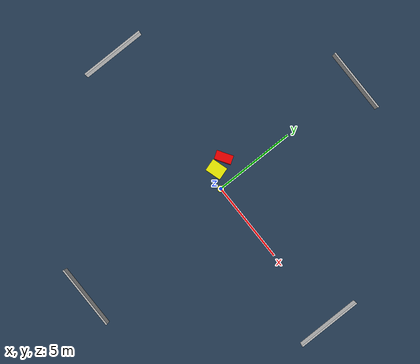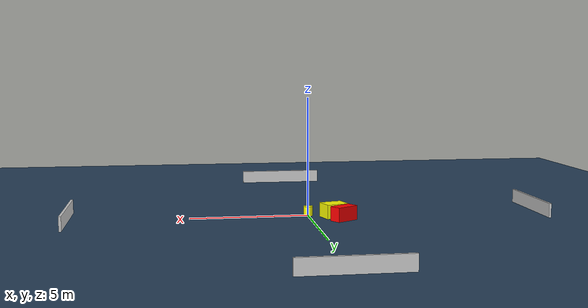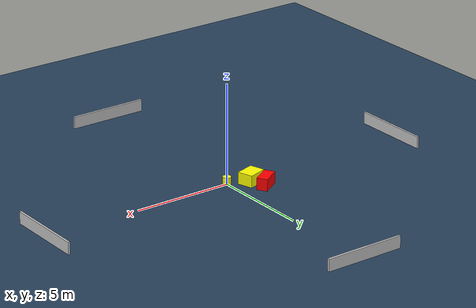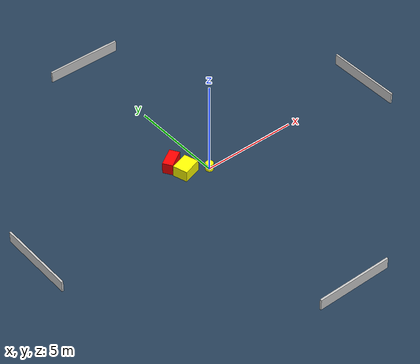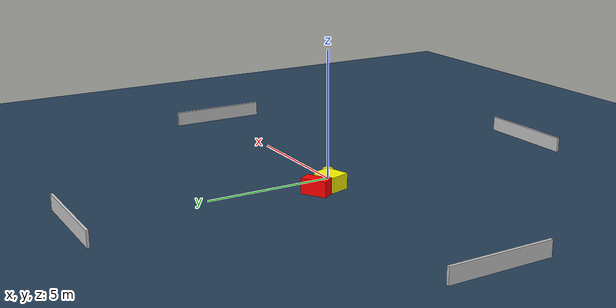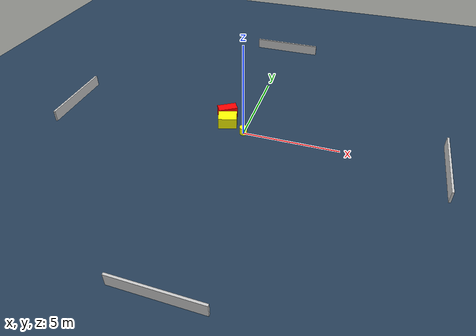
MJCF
<?xml version="1.0" ?>
<mujoco model="generated_environment">
  <option timestep="0.01" integrator="RK4" cone="elliptic"/>
  <default>
    <geom density="1"/>
  </default>
  <asset>
    <texture builtin="gradient" height="3072" name="skybox" rgb1="0.3 0.5 0.7" rgb2="0 0 0" type="skybox" width="512"/>
    <texture builtin="checker" height="300" name="groundplane" rgb1="0.2 0.3 0.4" rgb2="0.1 0.2 0.3" type="2d" width="300"/>
    <material name="groundplane" reflectance="0.2" texrepeat="5 5" texture="groundplane"/>
  </asset>
  <worldbody>
    <light dir="0 0 -1" directional="true" pos="0 0 1.5"/>
    <geom condim="3" friction="0.5 0.005 0.001" material="groundplane" name="floor" pos="0 0 0" size="0 0 0.05" type="plane"/>
    <body name="walls">
      <geom name="wall_1" condim="4" pos="-10.0 0.0 0.3" rgba="0.800000011920929 0.800000011920929 0.800000011920929 1.0" size="0.05 2.0 0.3" type="box"/>
      <geom name="wall_2" condim="4" pos="10.0 0.0 0.3" rgba="0.800000011920929 0.800000011920929 0.800000011920929 1.0" size="0.05 2.0 0.3" type="box"/>
      <geom name="wall_3" condim="4" pos="0.0 -10.0 0.3" rgba="0.800000011920929 0.800000011920929 0.800000011920929 1.0" size="2.0 0.05 0.3" type="box"/>
      <geom name="wall_4" condim="4" pos="0.0 10.0 0.3" rgba="0.800000011920929 0.800000011920929 0.800000011920929 1.0" size="2.0 0.05 0.3" type="box"/>
    </body>
    <body name="robot">
      <joint name="joint_x" type="slide" pos="0 0 0" axis="1 0 0"/>
      <joint name="joint_y" type="slide" pos="0 0 0" axis="0 1 0"/>
      <geom name="robot" type="cylinder" pos="0.0 0.0 0.2" size="0.2 0.2 0.0" mass="5.0" friction="1.0 0.005 0.0001" condim="4" rgba="1.0 1.0 0.0 1.0"/>
    </body>
    <body name="obstacle_1_movable">
      <geom name="obstacle_1_movable" condim="4" pos="-1.032962719857682 0.5031271701119905 0.3" euler="0 0 286.859039691195" friction="0.0 0.005 0.001" rgba="1.0 1.0 0.0 1.0" size="0.38583188508910526 0.48873742030136763 0.3" type="box" mass="0.1"/>
      <joint type="free"/>
    </body>
    <body name="obstacle_2_static">
      <geom name="obstacle_2_static" condim="4" pos="-1.3082227789461738 1.2693397277990788 0.3" euler="0 0 122.18950798998141" friction="0.0 0.005 0.001" rgba="1.0 0.0 0.0 1.0" size="0.2639973248607938 0.5103974146079451 0.3" type="box"/>
    </body>
  </worldbody>
  <actuator>
    <motor name="actuator_x" joint="joint_x" gear="1" ctrlrange="-1 1"/>
    <motor name="actuator_y" joint="joint_y" gear="1" ctrlrange="-1 1"/>
  </actuator>
</mujoco>
